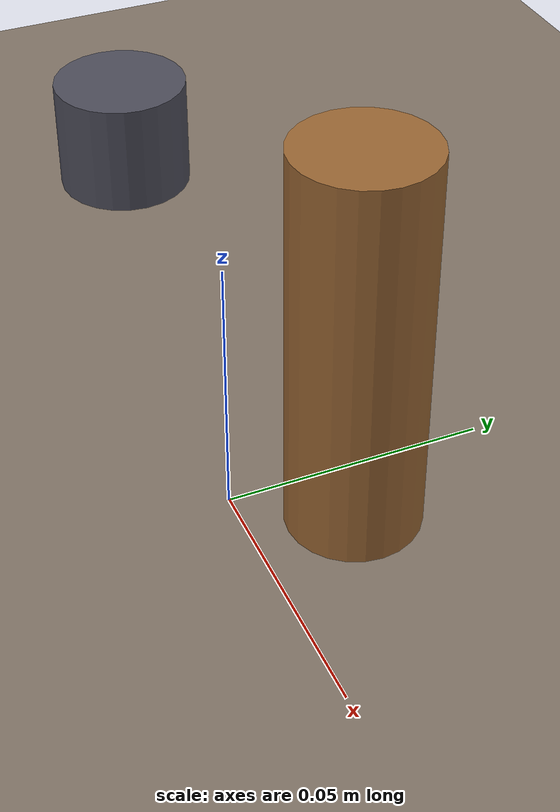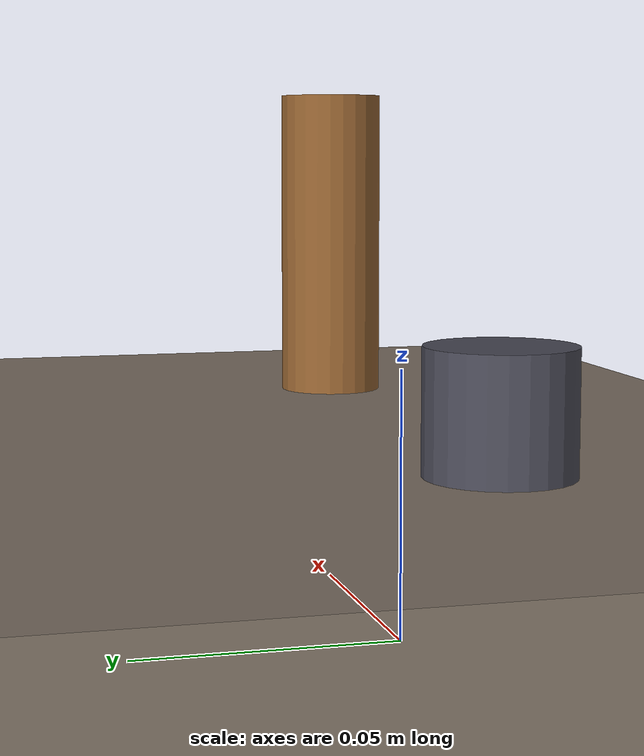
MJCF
<?xml version="1.0" encoding="utf-8"?>
<mujoco model="assembly">
  <compiler angle="radian" autolimits="true"/>
  <option timestep="0.002" gravity="0 0 -9.81"/>
  <worldbody>
    <geom name="ground" type="plane" size="1 1 0.1" condim="3"/>
    <light name="main" pos="0.5 0.5 1.2" dir="0 0 -1" directional="true"/>
    <camera name="main" pos="0.800 0.600 0.500" fovy="60" mode="fixed"/>
    <body name="surface_table" pos="0 0 0"><geom name="table_geom" type="box" size="0.4 0.3 0.02" pos="0 0 0.02" rgba="0.5 0.45 0.4 1" condim="3"/></body>
    <body name="object_peg" pos="0.05 0 0.06"><freejoint name="peg_joint"/><geom name="peg_geom" type="cylinder" size="0.01 0.04" mass="0.02" rgba="0.6 0.4 0.2 1"/></body>
    <body name="object_hole" pos="-0.05 0 0.04"><geom name="hole_geom" type="cylinder" size="0.012 0.02" rgba="0.3 0.3 0.35 1" contype="0" conaffinity="0"/></body>
  </worldbody>
  <contact/>
</mujoco>
